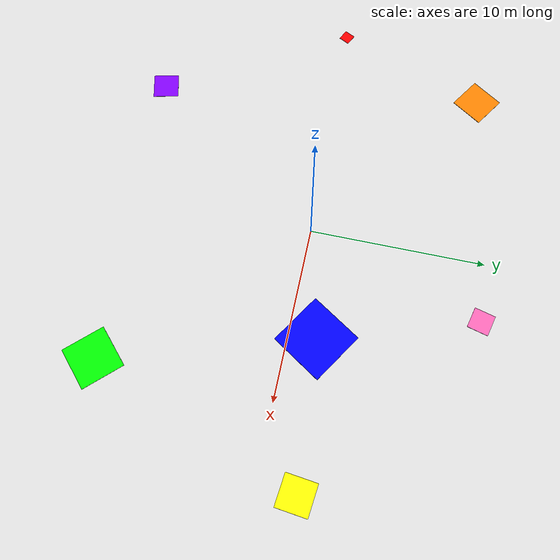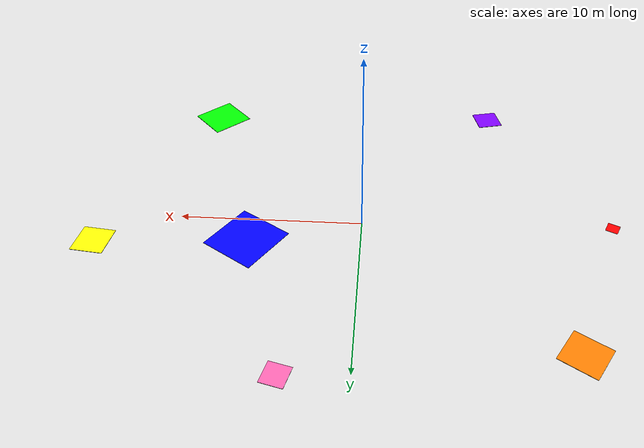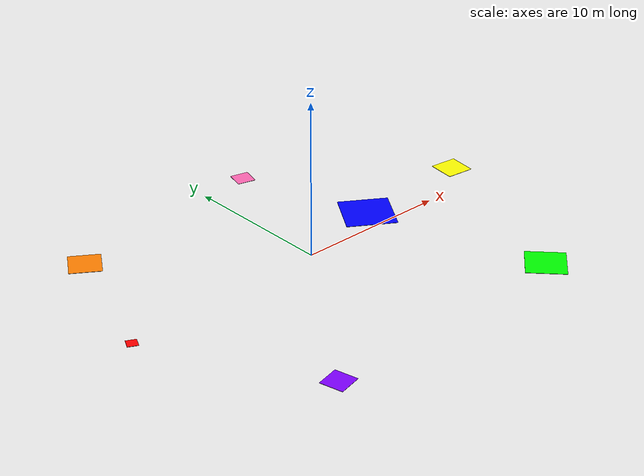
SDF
<sdf version="1.9">
 <world name="iris_runway">
  <physics name="1ms" type="ignore">
   <max_step_size>0.001</max_step_size>
   <real_time_factor>1.0</real_time_factor>
  </physics>
  <plugin filename="gz-sim-physics-system" name="gz::sim::systems::Physics"/>
  <plugin filename="gz-sim-user-commands-system" name="gz::sim::systems::UserCommands"/>
  <plugin filename="gz-sim-scene-broadcaster-system" name="gz::sim::systems::SceneBroadcaster"/>
  <plugin filename="gz-sim-sensors-system" name="gz::sim::systems::Sensors">
   <render_engine>ogre2</render_engine>
  </plugin>
  <plugin filename="gz-sim-imu-system" name="gz::sim::systems::Imu"/>
  <scene><ambient>1.0 1.0 1.0</ambient><background>0.8 0.8 0.8</background></scene>
  <light type="directional" name="sun">
   <pose>0 0 10 0 0 0</pose>
   <diffuse>0.8 0.8 0.8 1</diffuse>
   <specular>0.8 0.8 0.8 1</specular>
   <attenuation>
    <range>1000</range>
    <constant>0.9</constant>
    <linear>0.01</linear>
    <quadratic>0.001</quadratic>
   </attenuation>
   <direction>-0.5 0.1 -0.9</direction>
  </light>
  <model name="red_target">
   <pose>-13.661248125399547 -0.3918905599225333 0.01 0 0 2.6795045936026396</pose>
   <static>true</static>
   <link name="link">
    <visual name="visual">
     <geometry><box><size>0.66 0.66 0.02</size></box></geometry>
     <material><ambient>1 0 0 1</ambient><diffuse>1 0 0 1</diffuse></material>
    </visual>
   </link>
  </model>
  <model name="blue_target">
   <pose>6.1093174746728955 1.5482445304558752 0.01 0 0 2.5731168137010516</pose>
   <static>true</static>
   <link name="link">
    <visual name="visual">
     <geometry><box><size>3.22 3.22 0.02</size></box></geometry>
     <material><ambient>0 0 1 1</ambient><diffuse>0 0 1 1</diffuse></material>
    </visual>
   </link>
  </model>
  <model name="green_target">
   <pose>9.63197100007713 -10.007754817972586 0.01 0 0 2.32710666019068</pose>
   <static>true</static>
   <link name="link">
    <visual name="visual">
     <geometry><box><size>2.5 2.5 0.02</size></box></geometry>
     <material><ambient>0 1 0 1</ambient><diffuse>0 1 0 1</diffuse></material>
    </visual>
   </link>
  </model>
  <model name="yellow_target">
   <pose>14.274567120414925 2.150248061270581 0.01 0 0 1.4552280800730772</pose>
   <static>true</static>
   <link name="link">
    <visual name="visual">
     <geometry><box><size>1.8 1.8 0.02</size></box></geometry>
     <material><ambient>1 1 0 1</ambient><diffuse>1 1 0 1</diffuse></material>
    </visual>
   </link>
  </model>
  <model name="orange_target">
   <pose>-10.529094518966513 8.291172794746082 0.01 0 0 4.129847478197384</pose>
   <static>true</static>
   <link name="link">
    <visual name="visual">
     <geometry><box><size>2.0 2.0 0.02</size></box></geometry>
     <material><ambient>1 0.5 0 1</ambient><diffuse>1 0.5 0 1</diffuse></material>
    </visual>
   </link>
  </model>
  <model name="purple_target">
   <pose>-7.767612745302928 -10.717806145704888 0.01 0 0 1.801507640499197</pose>
   <static>true</static>
   <link name="link">
    <visual name="visual">
     <geometry><box><size>1.5 1.5 0.02</size></box></geometry>
     <material><ambient>0.5 0 1 1</ambient><diffuse>0.5 0 1 1</diffuse></material>
    </visual>
   </link>
  </model>
  <model name="pink_target">
   <pose>3.3286331914742533 10.203525534485475 0.01 0 0 4.460695926843253</pose>
   <static>true</static>
   <link name="link">
    <visual name="visual">
     <geometry><box><size>1.2 1.2 0.02</size></box></geometry>
     <material><ambient>1 0.4 0.7 1</ambient><diffuse>1 0.4 0.7 1</diffuse></material>
    </visual>
   </link>
  </model>
 </world>
</sdf>
